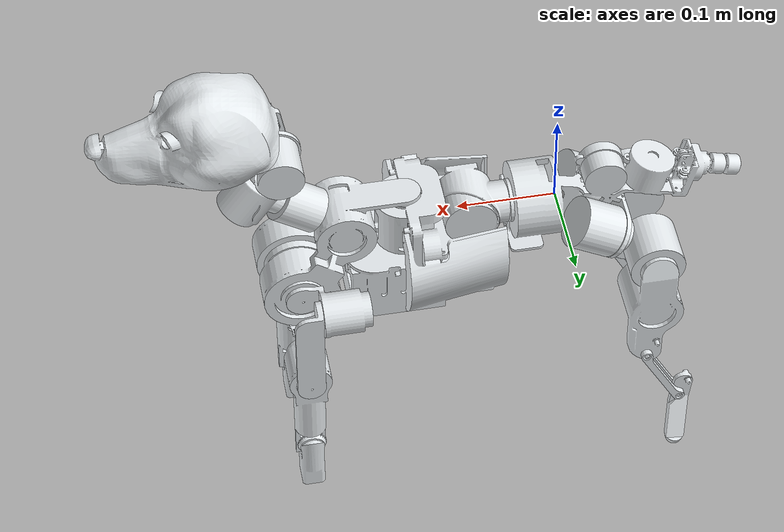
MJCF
<mujoco model="marsdog_v2">
  <compiler angle="radian" meshdir="." autolimits="true"/>
  <default>
    <default class="marsdog">
      <default class="visual">
        <geom type="mesh" contype="0" conaffinity="0" group="2" density="0" material="body"/>
      </default>
      <default class="collision">
        <geom group="3" contype="1" conaffinity="1"/>
      </default>
    </default>
  </default>
  <asset>
    <material name="body" rgba="0.898039 0.917647 0.929412 1"/>
    <mesh name="base_link" file="base_link.STL" />
    <mesh name="rl_hip_link" file="rl_hip_link.STL" />
    <mesh name="rl_thigh_link" file="rl_thigh_link.STL" />
    <mesh name="rl_calf_link" file="rl_calf_link.STL" />
    <mesh name="rl_tarsus_link" file="rl_tarsus_link.STL" />
    <mesh name="rl_foot_link" file="rl_foot_link.STL" />
    <mesh name="rr_hip_link" file="rr_hip_link.STL" />
    <mesh name="rr_thigh_link" file="rr_thigh_link.STL" />
    <mesh name="rr_calf_link" file="rr_calf_link.STL" />
    <mesh name="rr_tarsus_link" file="rr_tarsus_link.STL" />
    <mesh name="rr_foot_link" file="rr_foot_link.STL" />
    <mesh name="waist_roll_link" file="waist_roll_link.STL" />
    <mesh name="waist_pitch_link" file="waist_pitch_link.STL" />
    <mesh name="waist_yaw_link" file="waist_yaw_link.STL" />
    <mesh name="neck_pitch_link" file="neck_pitch_link.STL" />
    <mesh name="head_roll_link" file="head_roll_link.STL" />
    <mesh name="head_yaw_link" file="head_yaw_link.STL" />
    <mesh name="head_pitch_link" file="head_pitch_link.STL" />
    <mesh name="fl_hip_pitch_link" file="fl_hip_pitch_link.STL" />
    <mesh name="fl_thigh_roll_link" file="fl_thigh_roll_link.STL" />
    <mesh name="fl_calf_link" file="fl_calf_link.STL" />
    <mesh name="fl_tarsus_link" file="fl_tarsus_link.STL" />
    <mesh name="fl_foot_link" file="fl_foot_link.STL" />
    <mesh name="fr_hip_pitch_link" file="fr_hip_pitch_link.STL" />
    <mesh name="fr_thigh_roll_link" file="fr_thigh_roll_link.STL" />
    <mesh name="fr_calf_link" file="fr_calf_link.STL" />
    <mesh name="fr_tarsus_link" file="fr_tarsus_link.STL" />
    <mesh name="fr_foot_link" file="fr_foot_link.STL" />
    <mesh name="tail_yaw_link" file="tail_yaw_link.STL" />
    <mesh name="tail_pitch_link" file="tail_pitch_link.STL" />
  </asset>
  <worldbody>
    <body name="base_link" pos="0 0 0" childclass="marsdog">
      <freejoint name="base_link"/>
      <inertial pos="-0.02697403 0.00018683 -0.00540412" mass="1.4386179" fullinertia="0.00181332 0.00387251 0.00397914 1.493e-05 0.00017964 -1.713e-05" />
      <geom class="visual" mesh="base_link"/>
      <geom name="base_hip_r_collision" class="collision" type="cylinder" size="0.032 0.035" pos="-0.033 0.0335 -0.0247" euler="0 1.0472 0"/>
      <geom name="base_hip_l_collision" class="collision" type="cylinder" size="0.032 0.035" pos="-0.033 -0.0335 -0.0247" euler="0 1.0472 0"/>
      <geom name="base_rear_collision" class="collision" type="box" size="0.07 0.0325 0.04" pos="-0.055 0 0.01"/>
      <geom name="base_front_collision" class="collision" type="cylinder" size="0.04 0.025" pos="0.0205 0 0" euler="0 1.5707963 0"/>
      <site name="imu" size="0.01" pos="0 0 0"/>
      <body name="tail_yaw_link" pos="-0.16074 0 0.014415" euler="0 -0.24435 0">
        <joint name="tail_yaw_joint" type="hinge" range="-0.3 0.3" axis="0 1 0" actuatorfrcrange="-6.0 6.0"/>
        <inertial pos="-0.00733544 0 0" mass="0.00601534" fullinertia="3.1e-07 2.6e-07 2.6e-07 0 0 0" />
        <geom class="visual" mesh="tail_yaw_link"/>
        <geom name="tail_yaw_collision" class="collision" type="cylinder" size="0.01 0.01" pos="-0.008 0 0" euler="0 1.5707963 0"/>
        <body name="tail_pitch_link" pos="-0.016782 0 0">
          <joint name="tail_pitch_joint" type="hinge" range="-0.3 0.3" axis="1 0 0" actuatorfrcrange="-6.0 6.0"/>
          <inertial pos="-0.02353544 0 0" mass="0.00601534" fullinertia="3.1e-07 2.6e-07 2.6e-07 0 0 0" />
          <geom class="visual" mesh="tail_pitch_link"/>
          <geom name="tail_pitch_collision" class="collision" type="cylinder" size="0.009 0.02" pos="-0.024 0 0" euler="0 1.5707963 0"/>
        </body>
      </body>
      <body name="rl_hip_link" pos="-0.053087169 0.033500401 -0.030649453" euler="0 -0.52359878 0">
        <joint name="rl_hip_joint" type="hinge" range="-0.49 0.77" axis="1 0 0" actuatorfrcrange="-18.0 18.0"/>
        <inertial pos="-0.04360674 0.01300222 0" mass="0.40282962" fullinertia="0.00018066 0.00021966 0.0002252 1.928e-05 0 0" />
        <geom class="visual" mesh="rl_hip_link"/>
        <geom name="rl_hip_collision" class="collision" type="cylinder" size="0.032 0.035" pos="-0.045 0.02 0" euler="1.5707963 0 0"/>
        <body name="rl_thigh_link" pos="-0.047 0.0394 0" euler="1.309e-05 0.5236 0">
          <joint name="rl_thigh_joint" type="hinge" range="-0.71 1.77" axis="0 1 0" actuatorfrcrange="-14.0 14.0"/>
          <inertial pos="0.00072389 -0.01711856 -0.05906162" mass="0.39029186" fullinertia="0.00033472 0.00029481 0.00019633 -6.65e-06 9.29e-06 -2.028e-05" />
          <geom class="visual" mesh="rl_thigh_link"/>
          <geom name="rl_thigh_collision" class="collision" type="cylinder" size="0.03 0.0325" pos="0.001 -0.017 -0.059" euler="1.5707963 0 0"/>
          <body name="rl_calf_link" pos="0.0081505553 0.0079 -0.11883018">
            <joint name="rl_calf_joint" type="hinge" range="0 1.56" axis="0 1 0" actuatorfrcrange="-14.0 14.0"/>
            <inertial pos="-0.0178134 -0.00245 -0.03584227" mass="0.02748893" fullinertia="1.955e-05 2.385e-05 6.75e-06 0 -9.82e-06 0" />
            <geom class="visual" mesh="rl_calf_link"/>
            <geom name="rl_calf_collision" class="collision" type="box" size="0.0115 0.015 0.0275" pos="-0.019 0 -0.035" euler="0 0.5 0"/>
            <body name="rl_tarsus_link" pos="-0.038105 5e-05 -0.070342">
              <joint name="rl_tarsus_joint" type="hinge" range="-3.1415927 3.1415927" axis="0 1 0"/>
              <inertial pos="-0.00132315 0.00192812 -0.02213084" mass="0.03245619" fullinertia="1.782e-05 1.821e-05 2.15e-06 -3.7e-07 1.96e-06 3.09e-06" />
              <geom class="visual" mesh="rl_tarsus_link"/>
              <geom name="rl_tarsus_collision" class="collision" type="box" size="0.007 0.01 0.03" pos="0 0.006 -0.029" euler="0 0.12 0"/>
              <body name="rl_foot_link" pos="0.0029939 0.011326 -0.058227" euler="0 -0.11813 0">
                <inertial pos="0 0 -0.00351823" mass="0.00282686" fullinertia="7e-08 7e-08 1e-07 0 0 0" />
                <geom class="visual" mesh="rl_foot_link"/>
                <geom name="rl_foot_collision" class="collision" type="mesh" mesh="rl_foot_link"/>
                <site name="rl" pos="0 0 -0.02" type="sphere" size="0.023" group="5"/>
              </body>
            </body>
          </body>
        </body>
      </body>
      <body name="rr_hip_link" pos="-0.053087 -0.0335 -0.03065" euler="0 -0.5236 0">
        <joint name="rr_hip_joint" type="hinge" range="-0.77 0.49" axis="1 0 0" actuatorfrcrange="-18.0 18.0"/>
        <inertial pos="-0.04360674 -0.01300222 0" mass="0.40282962" fullinertia="0.00018066 0.00021966 0.0002252 -1.928e-05 0 0" />
        <geom class="visual" mesh="rr_hip_link"/>
        <geom name="rr_hip_collision" class="collision" type="cylinder" size="0.032 0.035" pos="-0.045 -0.02 0" euler="1.5707963 0 0"/>
        <body name="rr_thigh_link" pos="-0.047 -0.0394 0" euler="1.3089969e-05 0.52359878 0">
          <joint name="rr_thigh_joint" type="hinge" range="-0.71 1.77" axis="0 1 0" actuatorfrcrange="-14.0 14.0"/>
          <inertial pos="0.00073574 0.01738841 -0.05957685" mass="0.38566891" fullinertia="0.00032072 0.00028262 0.00019336 6.76e-06 9.26e-06 1.58e-05" />
          <geom class="visual" mesh="rr_thigh_link"/>
          <geom name="rr_thigh_collision" class="collision" type="cylinder" size="0.03 0.0325" pos="0.001 0.017 -0.059" euler="1.5707963 0 0"/>
          <body name="rr_calf_link" pos="0.0081505553 -0.0079 -0.11883018">
            <joint name="rr_calf_joint" type="hinge" range="0 1.56" axis="0 1 0" actuatorfrcrange="-14.0 14.0"/>
            <inertial pos="-0.0178134 0.00245 -0.03584227" mass="0.02748893" fullinertia="1.955e-05 2.385e-05 6.75e-06 0 -9.82e-06 0" />
            <geom class="visual" mesh="rr_calf_link"/>
            <geom name="rr_calf_collision" class="collision" type="box" size="0.0115 0.015 0.0275" pos="-0.019 0 -0.035" euler="0 0.5 0"/>
            <body name="rr_tarsus_link" pos="-0.038104733 -5e-05 -0.07034223">
              <joint name="rr_tarsus_joint" type="hinge" range="-3.1415927 3.1415927" axis="0 1 0"/>
              <inertial pos="-0.00132315 -0.00192812 -0.02213084" mass="0.03245619" fullinertia="1.782e-05 1.821e-05 2.15e-06 3.7e-07 1.96e-06 -3.09e-06" />
              <geom class="visual" mesh="rr_tarsus_link"/>
              <geom name="rr_tarsus_collision" class="collision" type="box" size="0.007 0.01 0.03" pos="0 -0.006 -0.029" euler="0 0.12 0"/>
              <body name="rr_foot_link" pos="0.0029939185 -0.011326251 -0.058227445" euler="0 -0.11812507 0">
                <inertial pos="0 0 -0.00351823" mass="0.00282686" fullinertia="7e-08 7e-08 1e-07 0 0 0" />
                <geom class="visual" mesh="rr_foot_link"/>
                <geom name="rr_foot_collision" class="collision" type="mesh" mesh="rr_foot_link"/>
                <site name="rr" pos="0 0 -0.02" type="sphere" size="0.023" group="5"/>
              </body>
            </body>
          </body>
        </body>
      </body>
      <body name="waist_roll_link" pos="0.0455 0 0">
        <joint name="waist_roll_joint" type="hinge" range="-1 1" axis="1 0 0" actuatorfrcrange="-17.0 17.0"/>
        <inertial pos="0.04070694 -0.00374882 0.00017385" mass="0.35780146" fullinertia="0.00013817 0.00017797 0.00016983 8.55e-06 -2.5e-07 1.44e-06" />
        <geom class="visual" mesh="waist_roll_link"/>
        <geom name="waist_roll_collision" class="collision" type="cylinder" size="0.03 0.035" pos="0.041 0 0" euler="1.5707963 0 0"/>
        <body name="waist_pitch_link" pos="0.045 -0.024 0">
          <joint name="waist_pitch_joint" type="hinge" range="-0.3 0.34" axis="0 1 0" actuatorfrcrange="-18.0 18.0"/>
          <inertial pos="0.03949017 0.02394838 -0.03756478" mass="4.2317782" fullinertia="0.01143907 0.01233052 0.01066144 -3.083e-05 0.00087584 6.88e-05" />
          <geom class="visual" mesh="waist_pitch_link"/>
          <geom name="waist_pitch_collision1" class="collision" type="cylinder" size="0.032 0.035" pos="0.05 0 0.01"/>
          <geom name="waist_pitch_collision2" class="collision" type="box" size="0.045 0.05 0.03" pos="0.045 0.024 -0.07"/>
          <body name="waist_yaw_link" pos="0.0635 0.024 0.02275">
            <joint name="waist_yaw_joint" type="hinge" range="-1.2 1.2" axis="0 0 1" actuatorfrcrange="-18.0 18.0"/>
            <inertial pos="0.0934864 0.00177277 -0.05980668" mass="1.281407" fullinertia="0.00239015 0.00290637 0.00191513 7.154e-05 0.00100313 -9.495e-05" />
            <geom class="visual" mesh="waist_yaw_link"/>
            <geom name="waist_yaw_collision1" class="collision" type="cylinder" size="0.031 0.034" pos="0.063 0 -0.02" euler="1.5707963 0 0"/>
            <geom name="waist_yaw_collision2" class="collision" type="cylinder" size="0.04 0.044" pos="0.111 0 -0.082" euler="1.5707963 0 0"/>
            <body name="neck_pitch_link" pos="0.0635 0.02825 -0.0185">
              <joint name="neck_pitch_joint" type="hinge" range="-0.58 0.45" axis="0 1 0" actuatorfrcrange="-18.0 18.0"/>
              <inertial pos="0.04340968 -0.02351023 0.03039197" mass="0.24748464" fullinertia="0.00011721 0.00013092 0.00013973 2.874e-05 -3.093e-05 2.011e-05" />
              <geom class="visual" mesh="neck_pitch_link"/>
              <geom name="neck_pitch_collision" class="collision" type="cylinder" size="0.028 0.025" pos="0.043 -0.024 0.03" euler="0 -1 0"/>
              <body name="head_roll_link" pos="0.062255555 -0.0292 0.043591809" euler="0 -0.61086524 0">
                <joint name="head_roll_joint" type="hinge" range="-3.1415927 3.1415927" axis="1 0 0" actuatorfrcrange="-12.0 12.0"/>
                <inertial pos="0.0298812 0.00462939 0.04106704" mass="0.22511155" fullinertia="7.594e-05 7.105e-05 7.144e-05 3e-08 5e-08 2e-07" />
                <geom class="visual" mesh="head_roll_link"/>
                <geom name="head_roll_collision" class="collision" type="cylinder" size="0.026 0.025" pos="0.03 0 0.013"/>
                <body name="head_yaw_link" pos="0.03 0 0.013">
                  <joint name="head_yaw_joint" type="hinge" range="-3.1415927 3.1415927" axis="0 0 1" actuatorfrcrange="-12.0 12.0"/>
                  <inertial pos="-0.00193296 0.0001188 -0.01762939" mass="0.22511155" fullinertia="7.144e-05 7.594e-05 7.105e-05 -5e-08 -2e-07 3e-08" />
                  <geom class="visual" mesh="head_yaw_link"/>
                  <geom name="head_yaw_collision" class="collision" type="cylinder" size="0.025 0.03" pos="0 0 0.01" euler="1.5707963 0 0"/>
                  <body name="head_pitch_link" pos="0 -0.013 0.03" euler="0 0.61086524 0">
                    <joint name="head_pitch_joint" type="hinge" range="-1.7 0.5" axis="0 1 0" actuatorfrcrange="-12.0 12.0"/>
                    <inertial pos="0.06435141 0.00328185 0.04624769" mass="0.78588222" fullinertia="0.00114577 0.00196127 0.00205638 -3.497e-05 3.856e-05 -1.81e-05" />
                    <geom class="visual" mesh="head_pitch_link"/>
                    <geom name="head_pitch_collision" class="collision" type="cylinder" size="0.04 0.06" pos="0.064 0 0.046" euler="0 1.12 0"/>
                  </body>
                </body>
              </body>
            </body>
            <body name="fl_hip_pitch_link" pos="0.11134429 0.04125 -0.081991523">
              <joint name="fl_hip_pitch_joint" type="hinge" range="-3.1415927 0.97" axis="0 1 0" actuatorfrcrange="-17.0 17.0"/>
              <inertial pos="-0.03673375 0.02373127 0" mass="0.19550425" fullinertia="5.209e-05 7.47e-05 8.081e-05 1.186e-05 0 0" />
              <geom class="visual" mesh="fl_hip_pitch_link"/>
              <geom name="fl_hip_pitch_collision" class="collision" type="cylinder" size="0.025 0.0315" pos="-0.037 0.024 0" euler="0 1.5707963 0"/>
              <body name="fl_thigh_roll_link" pos="-0.0205 0.0255 0">
                <joint name="fl_thigh_roll_joint" type="hinge" range="-0.18 3.1415927" axis="1 0 0" actuatorfrcrange="-12.0 12.0"/>
                <inertial pos="0.01597399 0.01174741 -0.03872744" mass="0.08017506" fullinertia="0.00011818 0.00012039 1.252e-05 -3.45e-06 1.228e-05 1.009e-05" />
                <geom class="visual" mesh="fl_thigh_roll_link"/>
                <geom name="fl_thigh_roll_collision" class="collision" type="box" size="0.005 0.0175 0.035" pos="0.016 0.008 -0.035"/>
                <body name="fl_calf_link" pos="0.0205 0.0085 -0.09">
                  <joint name="fl_calf_joint" type="hinge" range="-1.82 1.93" axis="0 1 0" actuatorfrcrange="-12.0 12.0"/>
                  <inertial pos="5.097e-05 -0.01698315 -0.03590979" mass="0.41615103" fullinertia="0.00059236 0.00058218 8.194e-05 -4e-08 1.66e-06 2.36e-05" />
                  <geom class="visual" mesh="fl_calf_link"/>
                  <geom name="fl_calf_collision1" class="collision" type="cylinder" size="0.016 0.045" pos="0 -0.013 -0.055"/>
                  <geom name="fl_calf_collision2" class="collision" type="cylinder" size="0.023 0.025" pos="0 -0.014 0" euler="1.5707963 0 0"/>
                  <body name="fl_tarsus_link" pos="0 -0.012993138 -0.11088652">
                    <joint name="fl_tarsus_joint" type="hinge" range="-0.03 1.49" axis="0 1 0" actuatorfrcrange="-8.0 8.0"/>
                    <inertial pos="0.00051211 -0.00136997 -0.02922072" mass="0.09354472" fullinertia="4.444e-05 4.068e-05 1.167e-05 -6e-08 -1.8e-07 -1.72e-06" />
                    <geom class="visual" mesh="fl_tarsus_link"/>
                    <geom name="fl_tarsus_collision" class="collision" type="cylinder" size="0.018 0.0275" pos="0 -0.002 -0.03"/>
                    <body name="fl_foot_link" pos="0 -0.0020199167 -0.059190233">
                      <inertial pos="0 0 -0.00351823" mass="0.00282686" fullinertia="7e-08 7e-08 1e-07 0 0 0" />
                      <geom class="visual" mesh="fl_foot_link"/>
                      <geom name="fl_foot_collision" class="collision" type="mesh" mesh="fl_foot_link"/>
                      <site name="fl" pos="0 0 -0.02" type="sphere" size="0.023" group="5"/>
                    </body>
                  </body>
                </body>
              </body>
            </body>
            <body name="fr_hip_pitch_link" pos="0.11134429 -0.04125 -0.081991523">
              <joint name="fr_hip_pitch_joint" type="hinge" range="-3.1415927 0.97" axis="0 1 0" actuatorfrcrange="-17.0 17.0"/>
              <inertial pos="-0.03673375 -0.02373127 0" mass="0.19550425" fullinertia="5.209e-05 7.47e-05 8.081e-05 -1.186e-05 0 0" />
              <geom class="visual" mesh="fr_hip_pitch_link"/>
              <geom name="fr_hip_pitch_collision" class="collision" type="cylinder" size="0.025 0.0315" pos="-0.037 -0.024 0" euler="0 1.5707963 0"/>
              <body name="fr_thigh_roll_link" pos="-0.0205 -0.0255 0">
                <joint name="fr_thigh_roll_joint" type="hinge" range="-3.1415927 0.18" axis="1 0 0" actuatorfrcrange="-12.0 12.0"/>
                <inertial pos="0.01597399 -0.01174741 -0.03872744" mass="0.08017506" fullinertia="0.00011818 0.00012039 1.252e-05 3.45e-06 1.228e-05 -1.009e-05" />
                <geom class="visual" mesh="fr_thigh_roll_link"/>
                <geom name="fr_thigh_roll_collision" class="collision" type="box" size="0.005 0.0175 0.035" pos="0.016 -0.008 -0.035"/>
                <body name="fr_calf_link" pos="0.0205 -0.0085 -0.09">
                  <joint name="fr_calf_joint" type="hinge" range="-1.82 1.93" axis="0 1 0" actuatorfrcrange="-12.0 12.0"/>
                  <inertial pos="4.915e-05 0.01698364 -0.03590979" mass="0.41615103" fullinertia="0.00059236 0.00058218 8.194e-05 2e-08 1.59e-06 -2.359e-05" />
                  <geom class="visual" mesh="fr_calf_link"/>
                  <geom name="fr_calf_collision1" class="collision" type="cylinder" size="0.016 0.045" pos="0 0.013 -0.055"/>
                  <geom name="fr_calf_collision2" class="collision" type="cylinder" size="0.023 0.025" pos="0 0.014 0" euler="1.5707963 0 0"/>
                  <body name="fr_tarsus_link" pos="0 0.012993138 -0.11088652">
                    <joint name="fr_tarsus_joint" type="hinge" range="-0.03 1.49" axis="0 1 0" actuatorfrcrange="-8.0 8.0"/>
                    <inertial pos="-4.504e-05 0.00132324 -0.03020079" mass="0.0905228" fullinertia="4.146e-05 3.798e-05 1.14e-05 9e-08 -8e-07 1.84e-06" />
                    <geom class="visual" mesh="fr_tarsus_link"/>
                    <geom name="fr_tarsus_collision" class="collision" type="cylinder" size="0.018 0.0275" pos="0 0.002 -0.03"/>
                    <body name="fr_foot_link" pos="-0.001125479 0.0020199167 -0.059179532" euler="0 0.019015753 0">
                      <inertial pos="0 0 -0.00351823" mass="0.00282686" fullinertia="7e-08 7e-08 1e-07 0 0 0" />
                      <geom class="visual" mesh="fr_foot_link"/>
                      <geom name="fr_foot_collision" class="collision" type="mesh" mesh="fr_foot_link"/>
                      <site name="fr" pos="0 0 -0.02" type="sphere" size="0.023" group="5"/>
                    </body>
                  </body>
                </body>
              </body>
            </body>
          </body>
        </body>
      </body>
    </body>
  </worldbody>

  <sensor>
    <gyro name="imu_ang_vel" site="imu"/>
    <velocimeter name="imu_lin_vel" site="imu"/>
  </sensor>
  <equality>
    <joint
      name="rl_tarsus_mimic"
      joint1="rl_tarsus_joint"
      joint2="rl_calf_joint"
      polycoef="0 1.0 0 0 0"
      solref="0.005 1"
      solimp="0.95 0.99 0.001"
    />
    <joint
      name="rr_tarsus_mimic"
      joint1="rr_tarsus_joint"
      joint2="rr_calf_joint"
      polycoef="0 -1.0 0 0 0"
      solref="0.005 1"
      solimp="0.95 0.99 0.001"
    />
  </equality>
</mujoco>
